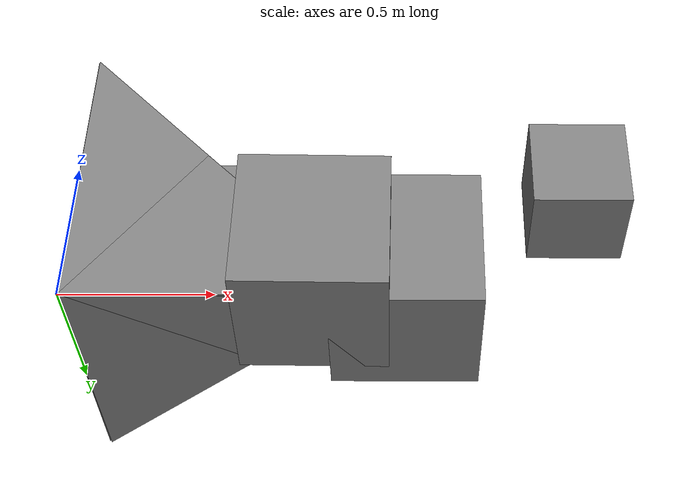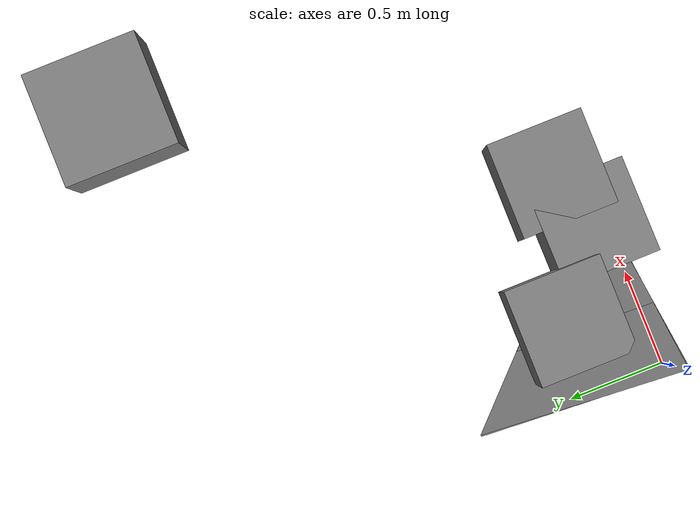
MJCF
<mujoco model="contact_route_box_mesh">
  <option gravity="0 0 0"/>
  <asset>
    <mesh name="tetra" vertex="0 0 0 1 0 0 0 1 0 0 0 1"
          face="0 2 1 0 1 3 0 3 2 1 2 3"/>
  </asset>
  <contact>
    <pair geom1="box_no_contact" geom2="mesh_no_contact"/>
    <pair geom1="box_shallow" geom2="mesh_shallow"/>
    <pair geom1="box_deep" geom2="mesh_deep"/>
    <pair geom1="box_off_axis" geom2="mesh_off_axis"/>
  </contact>
  <worldbody>
    <body name="box_no_contact" pos="2 2 2">
      <freejoint/>
      <inertial pos="0 0 0" mass="1" diaginertia="1 1 1"/>
      <geom name="box_no_contact" type="box" size="0.25 0.25 0.25"/>
    </body>
    <body name="mesh_no_contact">
      <freejoint/>
      <inertial pos="0 0 0" mass="1" diaginertia="1 1 1"/>
      <geom name="mesh_no_contact" type="mesh" mesh="tetra"/>
    </body>
    <body name="box_shallow" pos="1.1 0.2 0.2">
      <freejoint/>
      <inertial pos="0 0 0" mass="1" diaginertia="1 1 1"/>
      <geom name="box_shallow" type="box" size="0.25 0.25 0.25"/>
    </body>
    <body name="mesh_shallow">
      <freejoint/>
      <inertial pos="0 0 0" mass="1" diaginertia="1 1 1"/>
      <geom name="mesh_shallow" type="mesh" mesh="tetra"/>
    </body>
    <body name="box_deep" pos="0.4 0.4 0.4">
      <freejoint/>
      <inertial pos="0 0 0" mass="1" diaginertia="1 1 1"/>
      <geom name="box_deep" type="box" size="0.25 0.25 0.25"/>
    </body>
    <body name="mesh_deep">
      <freejoint/>
      <inertial pos="0 0 0" mass="1" diaginertia="1 1 1"/>
      <geom name="mesh_deep" type="mesh" mesh="tetra"/>
    </body>
    <body name="box_off_axis" pos="0.8 0.1 0.2" euler="0.2 0.3 0.4">
      <freejoint/>
      <inertial pos="0 0 0" mass="1" diaginertia="1 1 1"/>
      <geom name="box_off_axis" type="box" size="0.25 0.25 0.25"/>
    </body>
    <body name="mesh_off_axis" euler="0.3 0.2 0.4">
      <freejoint/>
      <inertial pos="0 0 0" mass="1" diaginertia="1 1 1"/>
      <geom name="mesh_off_axis" type="mesh" mesh="tetra"/>
    </body>
  </worldbody>
</mujoco>
